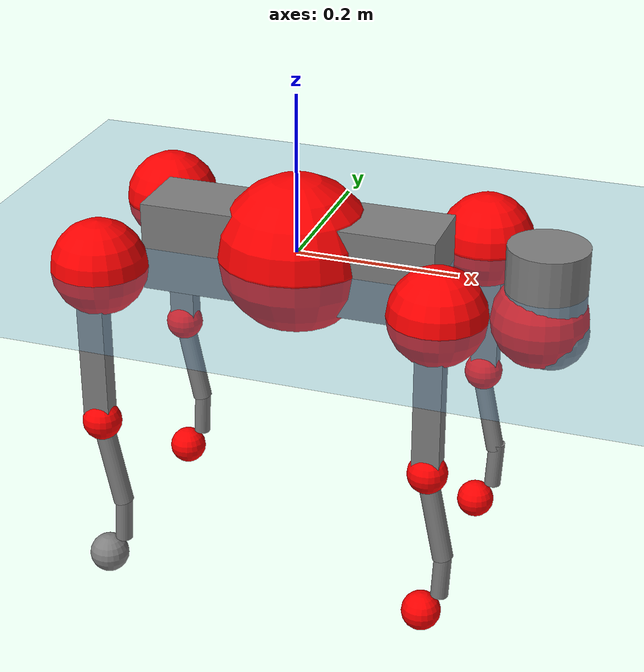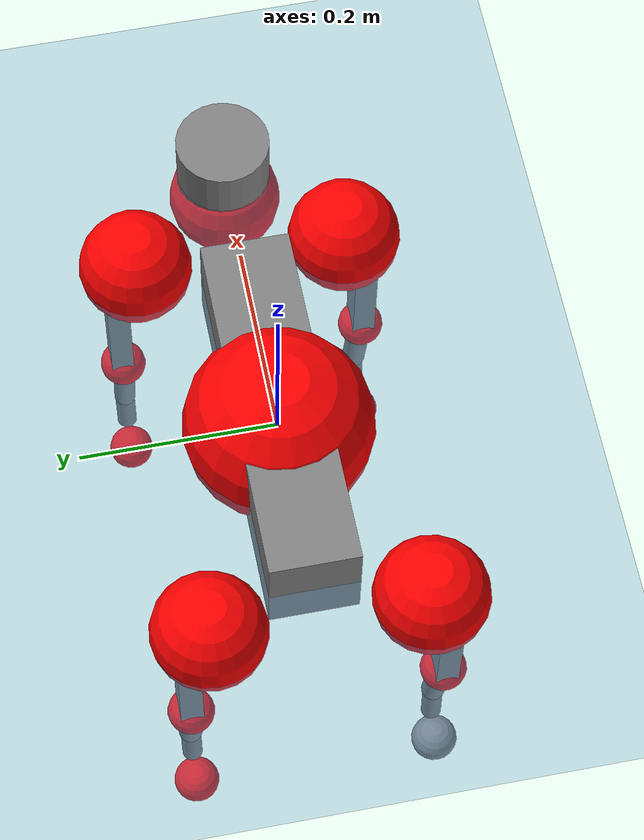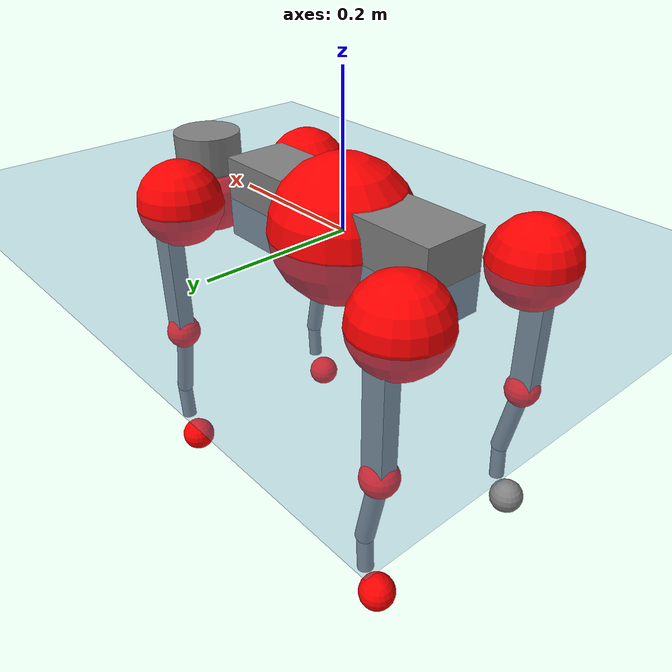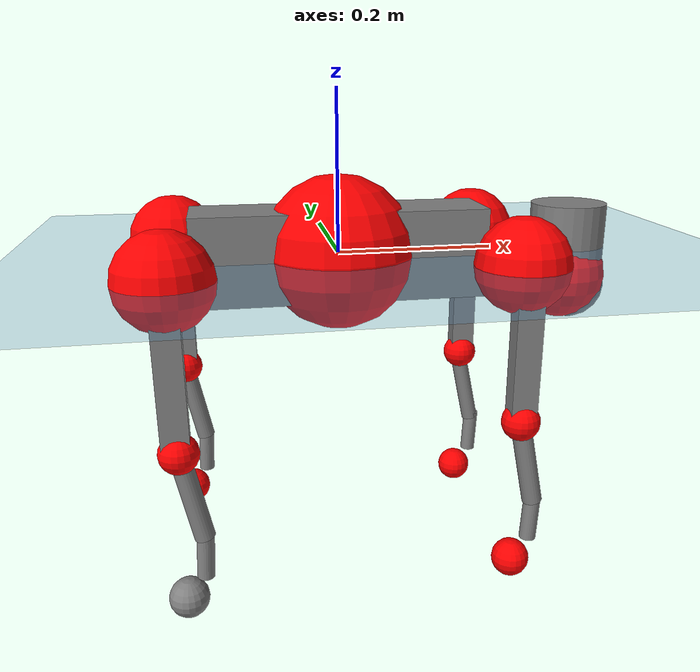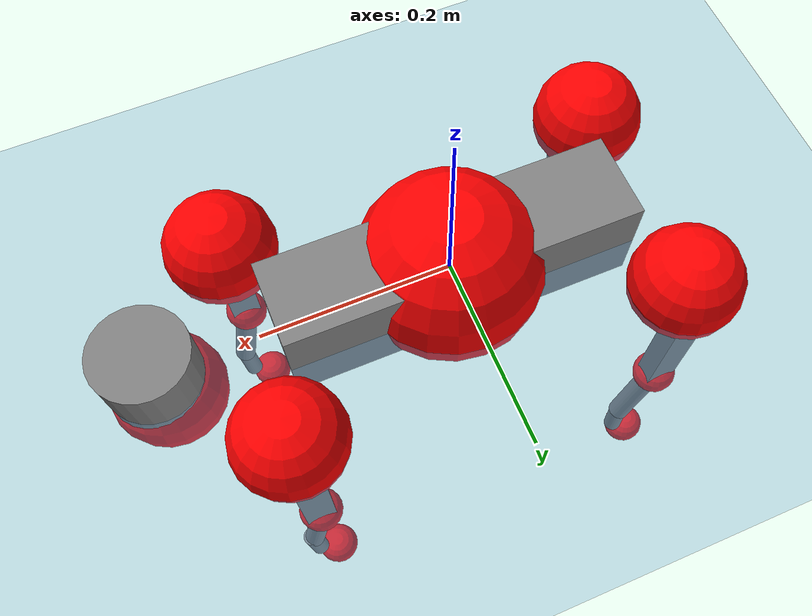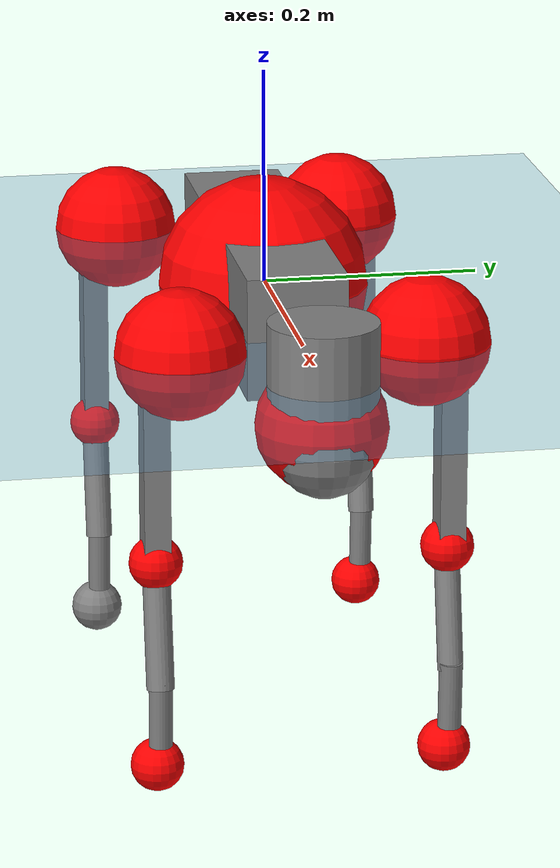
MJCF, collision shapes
<mujoco model="go2">
  <compiler angle="radian" assetdir="assets" balanceinertia="true" inertiafromgeom="false"/>

  <option timestep="0.005" density="1.2" viscosity="2e-05"/>

  <size nkey="1"/>

  <visual>
    <quality shadowsize="8192"/>
    <map shadowclip="0.5"/>
  </visual>

  <default>
    <default class="/">
      <geom contype="0" conaffinity="0" group="1" solref="-1000 -80"/>
      <site size="0.01 0.005 0.005" group="5"/>
      <general forcelimited="true" biastype="affine" gainprm="20" biasprm="0 -20 -0.5"/>
      <default class="go2">
        <joint armature="0.01" damping="0.01" frictionloss="0.2"/>
        <geom condim="1" margin="0.001"/>
        <default class="visual">
          <geom type="mesh" group="2"/>
        </default>
        <default class="collision">
          <geom group="3"/>
          <default class="foot">
            <geom size="0.022 0 0" condim="6" priority="1" friction="0.8 0.02 0.01" solimp="0.015 1 0.022"/>
          </default>
        </default>
        <default class="reward_collision_sphere">
          <geom group="5" rgba="1 0 0 1"/>
        </default>
      </default>
    </default>
  </default>

  <asset>
    <texture type="skybox" colorspace="auto" name="//unnamed_texture_0" builtin="gradient" rgb1="0.95 0.95 0.95" rgb2="0.95 0.95 0.95" width="100" height="600"/>
    <texture type="2d" colorspace="auto" name="texplane" builtin="checker" rgb1="0.345 0.575 0.748" rgb2="0.345 0.575 0.748" markrgb="1 1 1" width="512" height="512"/>
    <material name="MatPlane" class="/" texture="texplane" texuniform="true" texrepeat="2 2" specular="0.9"/>
    <material name="metal" class="/" rgba="0.9 0.95 0.95 1"/>
    <material name="black" class="/" rgba="0 0 0 1"/>
    <material name="white" class="/"/>
    <material name="gray" class="/" rgba="0.671705 0.692426 0.77427 1"/>
    <mesh name="base_0" class="/" file="base_0.obj"/>
    <mesh name="base_1" class="/" file="base_1.obj"/>
    <mesh name="base_2" class="/" file="base_2.obj"/>
    <mesh name="base_3" class="/" file="base_3.obj"/>
    <mesh name="base_4" class="/" file="base_4.obj"/>
    <mesh name="hip_0" class="/" file="hip_0.obj"/>
    <mesh name="hip_1" class="/" file="hip_1.obj"/>
    <mesh name="thigh_0" class="/" file="thigh_0.obj"/>
    <mesh name="thigh_1" class="/" file="thigh_1.obj"/>
    <mesh name="thigh_mirror_0" class="/" file="thigh_mirror_0.obj"/>
    <mesh name="thigh_mirror_1" class="/" file="thigh_mirror_1.obj"/>
    <mesh name="calf_0" class="/" file="calf_0.obj"/>
    <mesh name="calf_1" class="/" file="calf_1.obj"/>
    <mesh name="calf_mirror_0" class="/" file="calf_mirror_0.obj"/>
    <mesh name="calf_mirror_1" class="/" file="calf_mirror_1.obj"/>
    <mesh name="foot" class="/" file="foot.obj"/>
  </asset>

  <worldbody>
    <geom name="floor" class="/" size="100 100 0.125" type="plane" group="0" material="MatPlane"/>
    <light name="toplight_shadow" class="/" pos="0 0 5" dir="0.0990148 0.0990148 -0.990148" type="directional" ambient="0.04 0.04 0.04" diffuse="0.55 0.55 0.55" specular="0.12 0.12 0.12"/>
    <light name="toplight_fill" class="/" pos="0 0 5" dir="0.0990148 0.0990148 -0.990148" type="directional" castshadow="false" ambient="0.04 0.04 0.04" diffuse="0.3 0.3 0.3" specular="0.08 0.08 0.08"/>
    <body name="trunk" childclass="go2" pos="5.73533e-05 -0.00115111 0.00101794" quat="1 -0.00037076 -0.000445849 0.000117742">
      <inertial pos="0.0223525 -0.00258739 -0.0034332" quat="-0.00127439 0.712362 -0.0018271 0.701809" mass="6.3378" diaginertia="0.142581 0.0673327 0.0158798"/>
      <joint name="//unnamed_joint_0" type="free" armature="0" damping="0" frictionloss="0"/>
      <geom name="//unnamed_geom_1" class="visual" material="black" mesh="base_0"/>
      <geom name="//unnamed_geom_2" class="visual" material="black" mesh="base_1"/>
      <geom name="//unnamed_geom_3" class="visual" material="black" mesh="base_2"/>
      <geom name="//unnamed_geom_4" class="visual" material="white" mesh="base_3"/>
      <geom name="//unnamed_geom_5" class="visual" material="gray" mesh="base_4"/>
      <geom name="trunk_1" class="collision" size="0.183468 0.0455989 0.0555965" type="box"/>
      <geom name="trunk_2" class="collision" size="0.0487688 0.0438919" pos="0.305874 0 0.00918902" type="cylinder"/>
      <geom name="trunk_3" class="collision" size="0.0458427" pos="0.31446 0 -0.0551341"/>
      <geom name="//unnamed_geom_9" class="reward_collision_sphere" size="0.0975377"/>
      <geom name="//unnamed_geom_10" class="reward_collision_sphere" size="0.0585226" pos="0.300508 0 -0.0413506"/>
      <site name="imu" pos="-0.0284527 0.00276569 0.0416607" size="0.00975377"/>
      <camera name="track" pos="0 -1.86797 0" quat="0.707107 0.707107 0 0" mode="trackcom"/>
      <camera name="ego_camera" pos="0.334851 0 0.0413506" quat="-0.5 -0.5 0.5 0.5"/>
      <body name="FL_hip" pos="0.207548 0.0444333 0.00053684" quat="1 -4.72987e-06 -1.14228e-05 5.28689e-06">
        <inertial pos="-0.00550707 5.48412e-05 0.000433958" quat="0.505935 0.501407 0.503268 0.489226" mass="0.624233" diaginertia="0.00123676 0.00042026 0.000308871"/>
        <joint name="FL_hip_joint" pos="0 0 0" axis="0.999986 -0.00485344 0.00218505" stiffness="0.0157262" range="-1.05143 1.06286" armature="0.00935856" damping="0.00756367" frictionloss="0.198147"/>
        <geom name="//unnamed_geom_11" class="visual" material="metal" mesh="hip_0"/>
        <geom name="//unnamed_geom_12" class="visual" material="gray" mesh="hip_1"/>
        <geom name="//unnamed_geom_13" class="collision" size="0.0448673 0.0195075" pos="0 0.0747189 0" quat="0.707107 0.707107 0 0" type="cylinder"/>
        <geom name="//unnamed_geom_14" class="reward_collision_sphere" size="0.0585226" pos="0 0.065379 0"/>
        <body name="FL_thigh" pos="0.000764366 0.0891 0.000265402" quat="0.999999 0.000907651 0.000841487 -0.000585659">
          <inertial pos="-0.00485173 -0.0180529 -0.030074" quat="0.829717 0.0825441 -0.0223631 0.551595" mass="1.06733" diaginertia="0.00818955 0.00427162 0.000574051"/>
          <joint name="FL_thigh_joint" pos="0 0 0" axis="0.00882166 0.999926 -0.00840788" stiffness="0.00258865" range="-1.59274 3.4412" armature="0.0110377" damping="0.00438172" frictionloss="0.191175"/>
          <geom name="//unnamed_geom_15" class="visual" material="metal" mesh="thigh_0"/>
          <geom name="//unnamed_geom_16" class="visual" material="gray" mesh="thigh_1"/>
          <geom name="//unnamed_geom_17" class="collision" size="0.103878 0.0119484 0.0165814" pos="0 0 -0.097863" quat="0.707107 0 0.707107 0" type="box"/>
          <body name="FL_calf" pos="-0.00141576 -0.00143083 -0.195021" quat="1 -0.000386367 2.68481e-05 -8.15465e-05">
            <inertial pos="0.00445876 -0.00125303 -0.131316" quat="0.711604 0.00434851 -0.00739848 0.702529" mass="0.218915" diaginertia="0.00210034 0.00106111 3.43371e-05"/>
            <joint name="FL_calf_joint" pos="0 0 0" axis="-0.00512594 0.999961 0.00719184" stiffness="0.0086903" range="-2.6716 -0.79724" armature="0.00957685" damping="0" frictionloss="0.185804"/>
            <geom name="//unnamed_geom_18" class="visual" material="gray" mesh="calf_0"/>
            <geom name="//unnamed_geom_19" class="visual" material="black" mesh="calf_1"/>
            <geom name="FL_calf0" class="collision" size="0.0117045 0.0585226" pos="0.00858594 0 -0.0551341" quat="0.994493 0 -0.104807 0" type="cylinder"/>
            <geom name="//unnamed_geom_21" class="collision" size="0.0107291 0.0316997" pos="0.0214648 0 -0.135997" quat="0.999688 0 0.0249974 0" type="cylinder"/>
            <geom name="//unnamed_geom_22" class="visual" pos="0 0 -0.195726" quat="1 0 0 0" material="black" mesh="foot"/>
            <geom name="FL_foot" class="foot" size="0.0178407" pos="-0.00214648 0 -0.195726"/>
            <geom name="//unnamed_geom_24" class="reward_collision_sphere" size="0.0243844"/>
            <geom name="//unnamed_geom_25" class="reward_collision_sphere" size="0.0243844" pos="-0.00214648 0 -0.195726"/>
            <site name="FL_foot" class="foot" pos="-0.00214648 0 -0.195726" size="0.00975377"/>
          </body>
        </body>
      </body>
      <body name="FR_hip" pos="0.205275 -0.0429369 -0.0013854" quat="1 -0.000146761 -3.41787e-06 -0.000230635">
        <inertial pos="-0.00576555 -0.00250969 0.000747806" quat="0.497628 0.509342 0.505517 0.487227" mass="0.635561" diaginertia="0.00123764 0.000423209 0.000311223"/>
        <joint name="FR_hip_joint" pos="0 0 0" axis="0.999999 -0.00122982 0.00118336" range="-1.05233 1.09454" armature="0.00990571" damping="0.0100611" frictionloss="0.184846"/>
        <geom name="//unnamed_geom_26" class="visual" pos="0 1.31409e-10 5.63642e-09" quat="4.63268e-05 1 0 0" material="metal" mesh="hip_0"/>
        <geom name="//unnamed_geom_27" class="visual" pos="0 2.1303e-10 -1.3941e-08" quat="4.63268e-05 1 0 0" material="gray" mesh="hip_1"/>
        <geom name="//unnamed_geom_28" class="collision" size="0.0448673 0.0195075" pos="0 -0.0747189 0" quat="0.707107 0.707107 0 0" type="cylinder"/>
        <geom name="//unnamed_geom_29" class="reward_collision_sphere" size="0.0585226" pos="0 -0.065379 0"/>
        <body name="FR_thigh" pos="0.000828378 -0.0889633 -7.92095e-06" quat="1 0.000276108 -0.000131728 -0.000195957">
          <inertial pos="-0.00369807 0.0200434 -0.0274326" quat="0.553998 -0.0174521 0.0826563 0.828221" mass="1.05219" diaginertia="0.00832799 0.0041373 0.000573735"/>
          <joint name="FR_thigh_joint" pos="0 0 0" axis="0.000825802 -0.999979 -0.00636848" stiffness="0.0118383" range="-3.50036 1.55123" armature="0.00866198" damping="0.024043" frictionloss="0.187335"/>
          <geom name="//unnamed_geom_30" class="visual" material="metal" mesh="thigh_mirror_0"/>
          <geom name="//unnamed_geom_31" class="visual" material="gray" mesh="thigh_mirror_1"/>
          <geom name="//unnamed_geom_32" class="collision" size="0.103878 0.0119484 0.0165814" pos="0 0 -0.097863" quat="0.707107 0 0.707107 0" type="box"/>
          <body name="FR_calf" pos="0.000295347 2.16445e-05 -0.192664" quat="1 -0.000120397 0.000444569 -3.9733e-05">
            <inertial pos="0.00589984 0.00186258 -0.130537" quat="0.704023 -0.00608213 -0.000427543 0.710151" mass="0.231311" diaginertia="0.00221121 0.00109342 3.56449e-05"/>
            <joint name="FR_calf_joint" pos="0 0 0" axis="0.0046652 -0.999969 0.00640025" range="0.815682 2.70166" armature="0.00998468" damping="0" frictionloss="0.202903"/>
            <geom name="//unnamed_geom_33" class="visual" material="gray" mesh="calf_mirror_0"/>
            <geom name="//unnamed_geom_34" class="visual" material="black" mesh="calf_mirror_1"/>
            <geom name="FR_calf0" class="collision" size="0.0126799 0.0585226" pos="0.0107324 0 -0.0551341" quat="0.995004 0 -0.0998334 0" type="cylinder"/>
            <geom name="//unnamed_geom_36" class="collision" size="0.0107291 0.0316997" pos="0.0214648 0 -0.135997" quat="0.999688 0 0.0249974 0" type="cylinder"/>
            <geom name="//unnamed_geom_37" class="visual" pos="0 0 -0.195726" quat="1 0 0 0" material="black" mesh="foot"/>
            <geom name="FR_foot" class="foot" size="0.0201322" pos="-0.00214648 0 -0.195726"/>
            <geom name="//unnamed_geom_39" class="reward_collision_sphere" size="0.0243844"/>
            <geom name="//unnamed_geom_40" class="reward_collision_sphere" size="0.0243844" pos="-0.00214648 0 -0.195726"/>
            <site name="FR_foot" class="foot" pos="-0.00214648 0 -0.195726" size="0.00975377"/>
          </body>
        </body>
      </body>
      <body name="RL_hip" pos="-0.208391 0.0433753 0.00202636" quat="1 -0.00025835 -2.23431e-05 8.15849e-05">
        <inertial pos="0.0049528 0.00284407 0.00106028" quat="0.506071 0.502031 0.49491 0.496911" mass="0.613652" diaginertia="0.00128248 0.000427419 0.000318997"/>
        <joint name="RL_hip_joint" pos="0 0 0" axis="-0.999869 -0.0131409 0.00945647" stiffness="0.0118633" range="-1.00336 1.06165" armature="0.0102054" damping="0.0132362" frictionloss="0.212496"/>
        <geom name="//unnamed_geom_41" class="visual" pos="-1.34455e-09 0 -2.63563e-07" quat="4.63268e-05 0 1 0" material="metal" mesh="hip_0"/>
        <geom name="//unnamed_geom_42" class="visual" pos="-2.17967e-09 0 -2.33742e-07" quat="4.63268e-05 0 1 0" material="gray" mesh="hip_1"/>
        <geom name="//unnamed_geom_43" class="collision" size="0.0448673 0.0195075" pos="0 0.0747189 0" quat="0.707107 0.707107 0 0" type="cylinder"/>
        <geom name="//unnamed_geom_44" class="reward_collision_sphere" size="0.0585226" pos="0 0.065379 0"/>
        <body name="RL_thigh" pos="-0.000123489 0.0893911 0.00154908" quat="0.999999 -0.00112986 1.98599e-05 -0.000626156">
          <inertial pos="-0.00416449 -0.0180029 -0.0307567" quat="0.824622 0.0850383 -0.0206939 0.558873" mass="1.03386" diaginertia="0.00843838 0.0041759 0.000592897"/>
          <joint name="RL_thigh_joint" pos="0 0 0" axis="0.00710625 0.999944 -0.00782637" stiffness="0.00501429" range="-0.520402 4.53052" armature="0.0102787" damping="0.018982" frictionloss="0.191274"/>
          <geom name="//unnamed_geom_45" class="visual" material="metal" mesh="thigh_0"/>
          <geom name="//unnamed_geom_46" class="visual" material="gray" mesh="thigh_1"/>
          <geom name="//unnamed_geom_47" class="collision" size="0.103878 0.0119484 0.0165814" pos="0 0 -0.097863" quat="0.707107 0 0.707107 0" type="box"/>
          <body name="RL_calf" pos="-0.0011252 -0.000755729 -0.194032" quat="1 -0.000181832 1.62118e-06 8.81196e-05">
            <inertial pos="0.00712063 0.00169846 -0.129919" quat="0.710754 0.00240276 -0.00203311 0.703433" mass="0.22531" diaginertia="0.00206895 0.00101281 3.37841e-05"/>
            <joint name="RL_calf_joint" pos="0 0 0" axis="-0.0162611 0.999865 0.00216628" stiffness="0.0111904" range="-2.66915 -0.841619" armature="0.0110464" damping="0.00363833" frictionloss="0.185865"/>
            <geom name="//unnamed_geom_48" class="visual" material="gray" mesh="calf_0"/>
            <geom name="//unnamed_geom_49" class="visual" material="black" mesh="calf_1"/>
            <geom name="RL_calf0" class="collision" size="0.0126799 0.0585226" pos="0.0107324 0 -0.0551341" quat="0.995004 0 -0.0998334 0" type="cylinder"/>
            <geom name="//unnamed_geom_51" class="collision" size="0.0107291 0.0316997" pos="0.0214648 0 -0.135997" quat="0.999688 0 0.0249974 0" type="cylinder"/>
            <geom name="//unnamed_geom_52" class="visual" pos="0 0 -0.195726" quat="1 0 0 0" material="black" mesh="foot"/>
            <geom name="RL_foot" class="foot" size="0.0191897" pos="-0.00214648 0 -0.195726"/>
            <geom name="//unnamed_geom_54" class="reward_collision_sphere" size="0.0243844"/>
            <geom name="//unnamed_geom_55" class="reward_collision_sphere" size="0.0243844" pos="-0.00214648 0 -0.195726"/>
            <site name="RL_foot" class="foot" pos="-0.00214648 0 -0.195726" size="0.00975377"/>
          </body>
        </body>
      </body>
      <body name="RR_hip" pos="-0.209993 -0.044483 -0.00216494" quat="0.999999 -0.000883826 -0.000148687 0.000939427">
        <inertial pos="0.00617295 -0.000840109 -0.000364584" quat="0.49903 0.496057 0.498873 0.505987" mass="0.628229" diaginertia="0.00125797 0.000418169 0.000324735"/>
        <joint name="RR_hip_joint" pos="0 0 0" axis="-0.999998 -0.000536615 0.00167556" stiffness="0.00747521" range="-1.0314 1.07043" armature="0.0109622" damping="0.00799661" frictionloss="0.202501"/>
        <geom name="//unnamed_geom_56" class="visual" pos="1.33973e-09 1.31409e-10 -2.69199e-07" quat="2.14617e-09 4.63268e-05 4.63268e-05 -1" material="metal" mesh="hip_0"/>
        <geom name="//unnamed_geom_57" class="visual" pos="2.1916e-09 2.1303e-10 -2.19801e-07" quat="2.14617e-09 4.63268e-05 4.63268e-05 -1" material="gray" mesh="hip_1"/>
        <geom name="//unnamed_geom_58" class="collision" size="0.0448673 0.0195075" pos="0 -0.0747189 0" quat="0.707107 0.707107 0 0" type="cylinder"/>
        <geom name="//unnamed_geom_59" class="reward_collision_sphere" size="0.0585226" pos="0 -0.065379 0"/>
        <body name="RR_thigh" pos="-0.000589005 -0.0879727 -0.00097367" quat="1 -0.000261403 -0.000106347 0.000396149">
          <inertial pos="-0.00391755 0.0192525 -0.0305307" quat="0.552323 -0.0181774 0.084562 0.829131" mass="1.04213" diaginertia="0.00835766 0.00415444 0.000561093"/>
          <joint name="RR_thigh_joint" pos="0 0 0" axis="0.00231338 -0.999986 -0.00476233" stiffness="0.00712456" range="-4.52791 0.577432" armature="0.00848396" damping="0.0221454" frictionloss="0.190285"/>
          <geom name="//unnamed_geom_60" class="visual" material="metal" mesh="thigh_mirror_0"/>
          <geom name="//unnamed_geom_61" class="visual" material="gray" mesh="thigh_mirror_1"/>
          <geom name="//unnamed_geom_62" class="collision" size="0.103878 0.0119484 0.0165814" pos="0 0 -0.097863" quat="0.707107 0 0.707107 0" type="box"/>
          <body name="RR_calf" pos="0.00241494 -0.000394905 -0.196971" quat="1 -4.9068e-06 -1.11622e-05 -1.63678e-05">
            <inertial pos="0.00631407 0.000682642 -0.130101" quat="0.70361 -0.00521983 0.000915295 0.710567" mass="0.227802" diaginertia="0.00209971 0.0010421 3.4802e-05"/>
            <joint name="RR_calf_joint" pos="0 0 0" axis="0.00278425 -0.999995 0.00146925" range="0.884424 2.72407" armature="0.00957317" damping="0.0142089" frictionloss="0.198278"/>
            <geom name="//unnamed_geom_63" class="visual" material="gray" mesh="calf_mirror_0"/>
            <geom name="//unnamed_geom_64" class="visual" material="black" mesh="calf_mirror_1"/>
            <geom name="RR_calf0" class="collision" size="0.0126799 0.0585226" pos="0.0107324 0 -0.0551341" quat="0.995004 0 -0.0998334 0" type="cylinder"/>
            <geom name="//unnamed_geom_66" class="collision" size="0.0107291 0.0316997" pos="0.0214648 0 -0.135997" quat="0.999688 0 0.0249974 0" type="cylinder"/>
            <geom name="//unnamed_geom_67" class="visual" pos="0 0 -0.195726" quat="1 0 0 0" material="black" mesh="foot"/>
            <geom name="RR_foot" class="foot" size="0.0248426" pos="-0.00214648 0 -0.195726"/>
            <geom name="//unnamed_geom_69" class="reward_collision_sphere" size="0.0243844"/>
            <geom name="//unnamed_geom_70" class="reward_collision_sphere" size="0.0243844" pos="-0.00214648 0 -0.195726"/>
            <site name="RR_foot" class="foot" pos="-0.00214648 0 -0.195726" size="0.00975377"/>
          </body>
        </body>
      </body>
    </body>
  </worldbody>

  <contact>
    <pair class="/" geom1="floor" geom2="FL_foot" name="//unnamed_contact_0"/>
    <pair class="/" geom1="floor" geom2="FR_foot" name="//unnamed_contact_1"/>
    <pair class="/" geom1="floor" geom2="RL_foot" name="//unnamed_contact_2"/>
    <pair class="/" geom1="floor" geom2="RR_foot" name="//unnamed_contact_3"/>
  </contact>

  <actuator>
    <general name="FL_hip" class="/" joint="FL_hip_joint" forcerange="-22.8815 22.8815" gainprm="19.7119" biasprm="0 -19.7119 -0.494538"/>
    <general name="FL_thigh" class="/" joint="FL_thigh_joint" forcerange="-23.49 23.49" gainprm="19.7119" biasprm="0 -19.7119 -0.494538"/>
    <general name="FL_calf" class="/" joint="FL_calf_joint" forcerange="-45.1637 45.1637" gainprm="19.7119" biasprm="0 -19.7119 -0.494538"/>
    <general name="FR_hip" class="/" joint="FR_hip_joint" forcerange="-23.0151 23.0151" gainprm="19.7119" biasprm="0 -19.7119 -0.494538"/>
    <general name="FR_thigh" class="/" joint="FR_thigh_joint" forcerange="-22.6402 22.6402" gainprm="19.7119" biasprm="0 -19.7119 -0.494538"/>
    <general name="FR_calf" class="/" joint="FR_calf_joint" forcerange="-41.3667 41.3667" gainprm="19.7119" biasprm="0 -19.7119 -0.494538"/>
    <general name="RL_hip" class="/" joint="RL_hip_joint" forcerange="-23.9368 23.9368" gainprm="19.7119" biasprm="0 -19.7119 -0.494538"/>
    <general name="RL_thigh" class="/" joint="RL_thigh_joint" forcerange="-22.9715 22.9715" gainprm="19.7119" biasprm="0 -19.7119 -0.494538"/>
    <general name="RL_calf" class="/" joint="RL_calf_joint" forcerange="-42.452 42.452" gainprm="19.7119" biasprm="0 -19.7119 -0.494538"/>
    <general name="RR_hip" class="/" joint="RR_hip_joint" forcerange="-23.1925 23.1925" gainprm="19.7119" biasprm="0 -19.7119 -0.494538"/>
    <general name="RR_thigh" class="/" joint="RR_thigh_joint" forcerange="-22.431 22.431" gainprm="19.7119" biasprm="0 -19.7119 -0.494538"/>
    <general name="RR_calf" class="/" joint="RR_calf_joint" forcerange="-48.4995 48.4995" gainprm="19.7119" biasprm="0 -19.7119 -0.494538"/>
  </actuator>

  <sensor>
    <gyro site="imu" name="imu_angular_velocity"/>
    <velocimeter site="imu" name="imu_linear_velocity"/>
    <framelinvel objtype="site" objname="FL_foot" name="FL_foot_global_linear_velocity"/>
    <framelinvel objtype="site" objname="FR_foot" name="FR_foot_global_linear_velocity"/>
    <framelinvel objtype="site" objname="RL_foot" name="RL_foot_global_linear_velocity"/>
    <framelinvel objtype="site" objname="RR_foot" name="RR_foot_global_linear_velocity"/>
  </sensor>

  <keyframe>
    <key name="home" qpos="0 0 0.325 1 0 0 0 0.1 0.8 -1.5 -0.1 -0.8 1.5 -0.1 0.8 -1.5 0.1 -0.8 1.5"/>
  </keyframe>
</mujoco>
